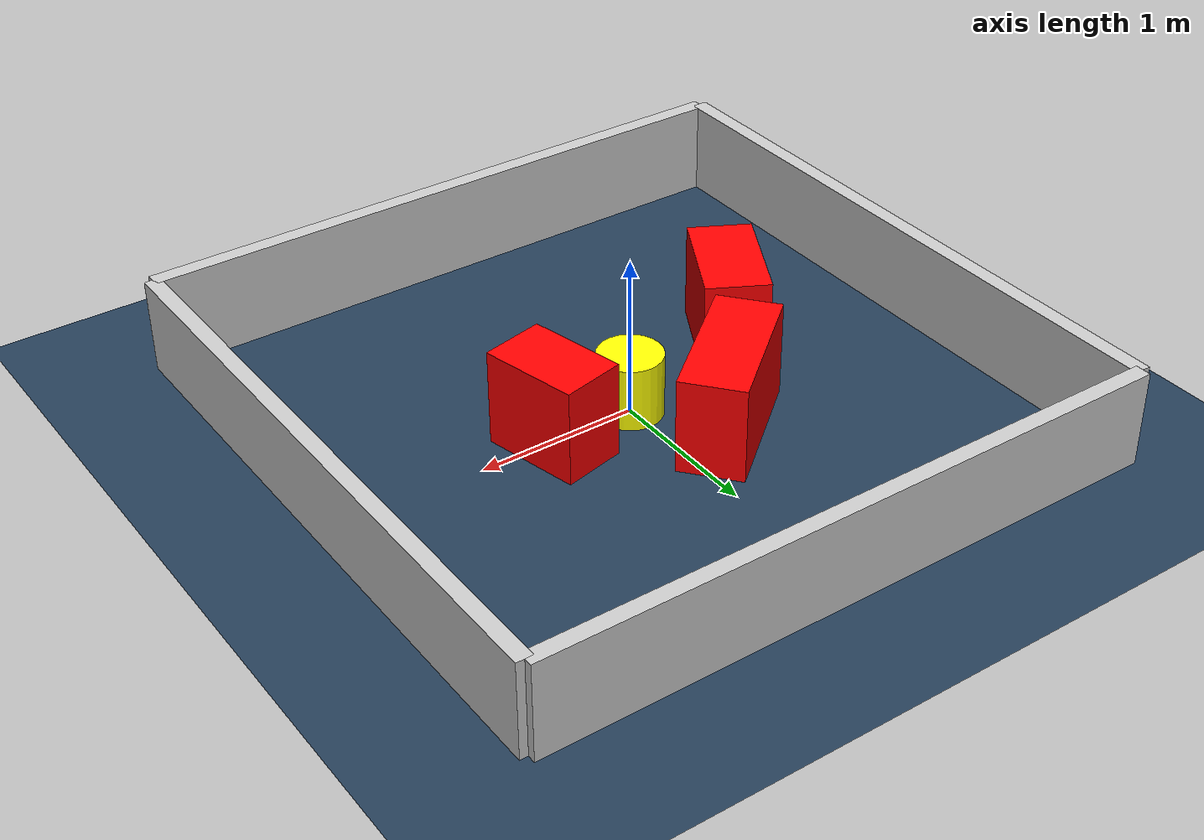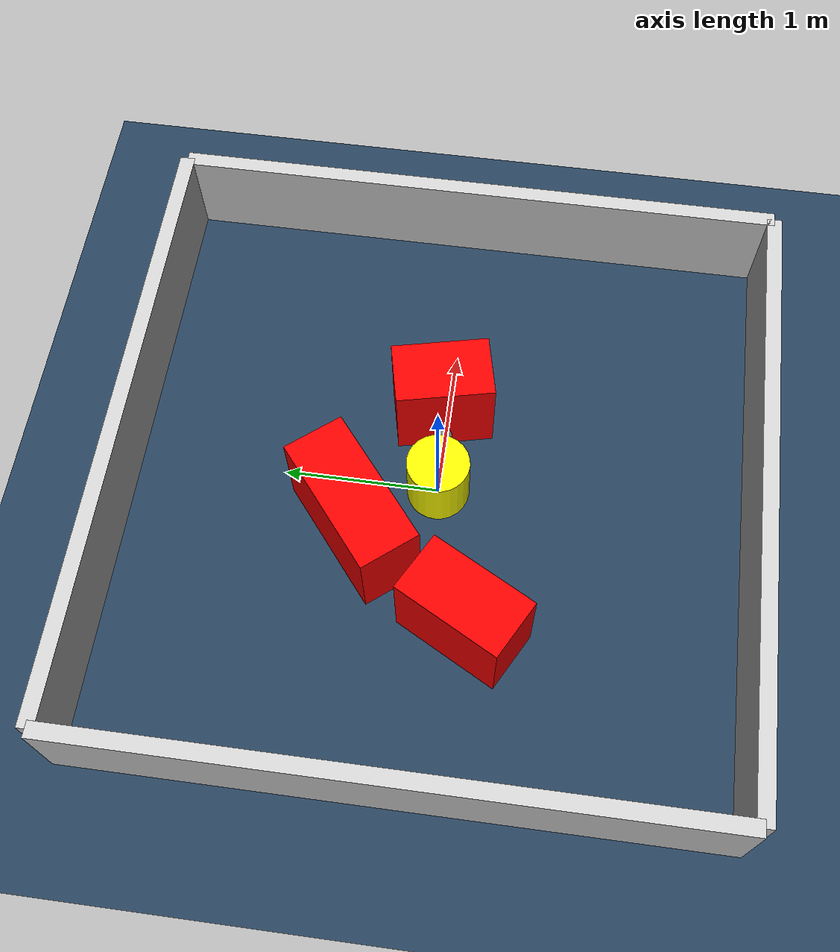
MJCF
<?xml version="1.0" ?>
<mujoco model="generated_environment">
  <option timestep="0.01" integrator="RK4" cone="elliptic"/>
  <default>
    <geom density="1"/>
  </default>
  <asset>
    <texture builtin="gradient" height="3072" rgb1="0.3 0.5 0.7" rgb2="0 0 0" type="skybox" width="512"/>
    <texture builtin="checker" height="300" mark="edge" markrgb="0.8 0.8 0.8" name="groundplane" rgb1="0.2 0.3 0.4" rgb2="0.1 0.2 0.3" type="2d" width="300"/>
    <material name="groundplane" reflectance="0.2" texrepeat="5 5" texture="groundplane" texuniform="true"/>
    <material name="robot" rgba="0.0 1.0 0.0 1"/>
  </asset>
  <worldbody>
    <light dir="0 0 -1" directional="true" pos="0 0 1.5"/>
    <geom condim="4" friction="1.0 0.005 0.001" material="groundplane" name="floor" size="0 0 0.05" type="plane"/>
    <body name="walls">
      <geom name="wall_1" condim="4" pos="-2.0 0.0 0.3" rgba="0.800000011920929 0.800000011920929 0.800000011920929 1.0" size="0.05 2.0 0.3" type="box"/>
      <geom name="wall_2" condim="4" pos="2.0 0.0 0.3" rgba="0.800000011920929 0.800000011920929 0.800000011920929 1.0" size="0.05 2.0 0.3" type="box"/>
      <geom name="wall_3" condim="4" pos="0.0 -2.0 0.3" rgba="0.800000011920929 0.800000011920929 0.800000011920929 1.0" size="2.0 0.05 0.3" type="box"/>
      <geom name="wall_4" condim="4" pos="0.0 2.0 0.3" rgba="0.800000011920929 0.800000011920929 0.800000011920929 1.0" size="2.0 0.05 0.3" type="box"/>
    </body>
    <body name="robot">
      <joint name="joint_x" type="slide" pos="0 0 0" axis="1 0 0"/>
      <joint name="joint_y" type="slide" pos="0 0 0" axis="0 1 0"/>
      <geom name="robot" type="sphere" pos="0.3 0.0 0.2" size="0.05" mass="5." friction="1.0 0.005 0.0001" condim="4" rgba="0.5 0.5 0.5 1.0"/>
      <site name="sensor_ball"/>
    </body>
    <body name="obstacle_movable_1">
      <geom name="obstacle_movable_1" condim="4" pos="0.0 0.0 0.2" euler="0 0 0.0" friction="1.0 0.005 0.001" rgba="1.0 1.0 0.0 1.0" size="0.2 0.2 0.0" type="cylinder" mass="0.1"/>
      <joint type="free"/>
    </body>
    <body name="obstacle_2_static">
      <geom name="obstacle_2_static" condim="4" pos="-0.9164530010645389 -0.2756831297058906 0.3" euler="0 0 241.59073837707396" friction="1.0 0.005 0.001" rgba="1 0 0 1" size="0.3611231489175618 0.2 0.3" type="box"/>
    </body>
    <body name="obstacle_3_static">
      <geom name="obstacle_3_static" condim="4" pos="0.555437985935832 0.044280383105064214 0.3" euler="0 0 282.89624422439095" friction="1.0 0.005 0.001" rgba="1 0 0 1" size="0.3105134231638034 0.2 0.3" type="box"/>
    </body>
    <body name="obstacle_4_static">
      <geom name="obstacle_4_static" condim="4" pos="-0.3487225325083363 0.48082944607147593 0.3" euler="0 0 39.28526713256324" friction="1.0 0.005 0.001" rgba="1 0 0 1" size="0.4636118004521699 0.2 0.3" type="box"/>
    </body>
  </worldbody>
  <actuator>
    <motor name="actuator_x" joint="joint_x" gear="1" ctrlrange="-1 1"/>
    <motor name="actuator_y" joint="joint_y" gear="1" ctrlrange="-1 1"/>
  </actuator>
</mujoco>
